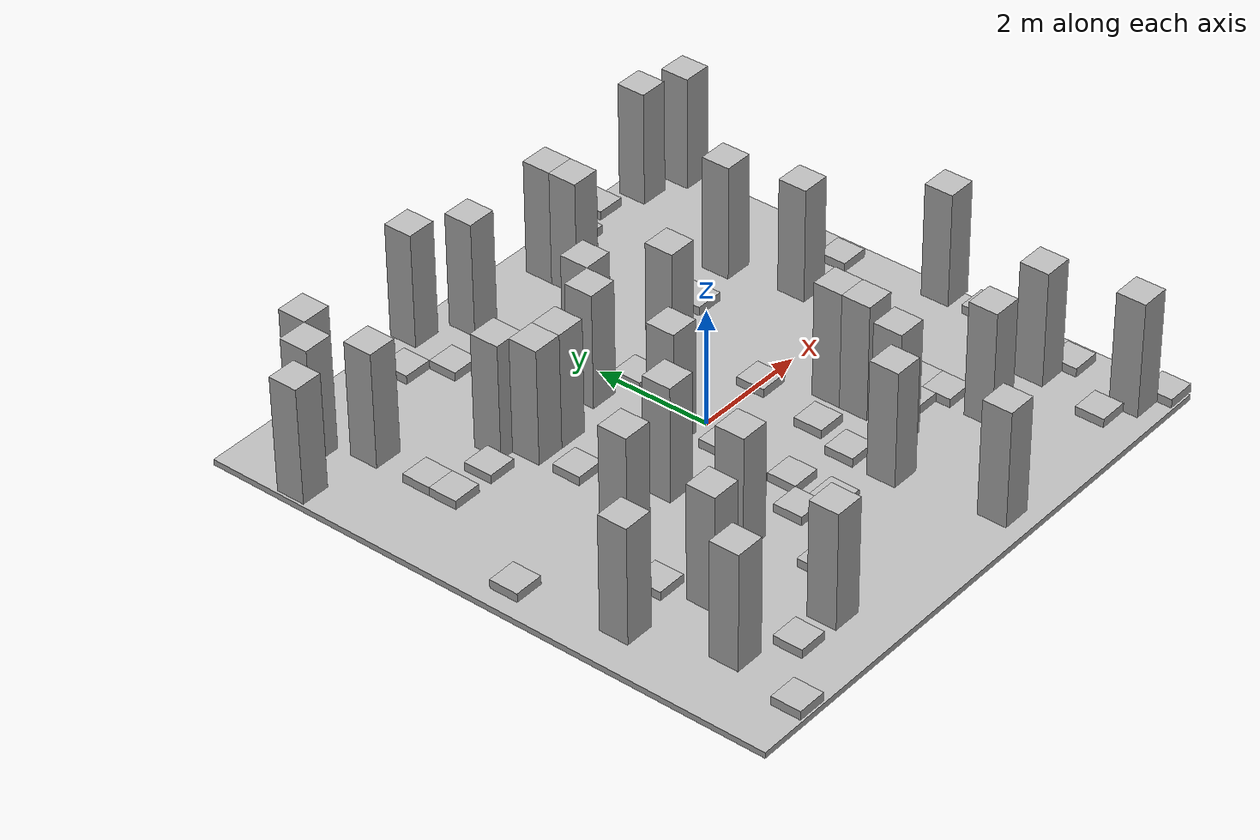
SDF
<?xml version="1.0" ?>
    <sdf version="1.4">
      <world name="simple_world">
        <model name="weld_models">

          <link name="ground">
            <pose>0 0 -0.1 0 0 0</pose>
            <collision name="collision1">
              <geometry>
                <box>
                  <size>10.0 10.0 0.1</size>
                </box>
              </geometry>
            </collision>
            <visual name="visual1">
              <geometry>
                <box>
                  <size>10.0 10.0 0.1</size>
                </box>
              </geometry>
            </visual>
          </link>
          <joint name="fixed_ground_joint" type="fixed">
            <parent>world</parent>
            <child>ground</child>
          </joint>

          <link name="obstacle_0">
            <pose>2.75 -3.0 1.0 0 0 0</pose>
            <collision name="collision1">
              <geometry>
                <box>
                  <size>0.5 0.5 2.0</size>
                </box>
              </geometry>
            </collision>
            <visual name="visual1">
              <geometry>
                <box>
                  <size>0.5 0.5 2.0</size>
                </box>
              </geometry>
            </visual>
          </link>
          <joint name="fixed_joint_obstacle_0" type="fixed">
            <parent>world</parent>
            <child>obstacle_0</child>
          </joint>

          <link name="obstacle_1">
            <pose>4.0 -3.0 1.0 0 0 0</pose>
            <collision name="collision1">
              <geometry>
                <box>
                  <size>0.5 0.5 2.0</size>
                </box>
              </geometry>
            </collision>
            <visual name="visual1">
              <geometry>
                <box>
                  <size>0.5 0.5 2.0</size>
                </box>
              </geometry>
            </visual>
          </link>
          <joint name="fixed_joint_obstacle_1" type="fixed">
            <parent>world</parent>
            <child>obstacle_1</child>
          </joint>

          <link name="obstacle_2">
            <pose>-0.25 4.25 1.0 0 0 0</pose>
            <collision name="collision1">
              <geometry>
                <box>
                  <size>0.5 0.5 2.0</size>
                </box>
              </geometry>
            </collision>
            <visual name="visual1">
              <geometry>
                <box>
                  <size>0.5 0.5 2.0</size>
                </box>
              </geometry>
            </visual>
          </link>
          <joint name="fixed_joint_obstacle_2" type="fixed">
            <parent>world</parent>
            <child>obstacle_2</child>
          </joint>

          <link name="obstacle_3">
            <pose>-1.5 -3.25 0.075 0 0 0</pose>
            <collision name="collision1">
              <geometry>
                <box>
                  <size>0.5 0.5 0.15</size>
                </box>
              </geometry>
            </collision>
            <visual name="visual1">
              <geometry>
                <box>
                  <size>0.5 0.5 0.15</size>
                </box>
              </geometry>
            </visual>
          </link>
          <joint name="fixed_joint_obstacle_3" type="fixed">
            <parent>world</parent>
            <child>obstacle_3</child>
          </joint>

          <link name="obstacle_4">
            <pose>2.25 -2.0 0.075 0 0 0</pose>
            <collision name="collision1">
              <geometry>
                <box>
                  <size>0.5 0.5 0.15</size>
                </box>
              </geometry>
            </collision>
            <visual name="visual1">
              <geometry>
                <box>
                  <size>0.5 0.5 0.15</size>
                </box>
              </geometry>
            </visual>
          </link>
          <joint name="fixed_joint_obstacle_4" type="fixed">
            <parent>world</parent>
            <child>obstacle_4</child>
          </joint>

          <link name="obstacle_5">
            <pose>2.25 2.0 0.075 0 0 0</pose>
            <collision name="collision1">
              <geometry>
                <box>
                  <size>0.5 0.5 0.15</size>
                </box>
              </geometry>
            </collision>
            <visual name="visual1">
              <geometry>
                <box>
                  <size>0.5 0.5 0.15</size>
                </box>
              </geometry>
            </visual>
          </link>
          <joint name="fixed_joint_obstacle_5" type="fixed">
            <parent>world</parent>
            <child>obstacle_5</child>
          </joint>

          <link name="obstacle_6">
            <pose>-1.75 4.25 0.075 0 0 0</pose>
            <collision name="collision1">
              <geometry>
                <box>
                  <size>0.5 0.5 0.15</size>
                </box>
              </geometry>
            </collision>
            <visual name="visual1">
              <geometry>
                <box>
                  <size>0.5 0.5 0.15</size>
                </box>
              </geometry>
            </visual>
          </link>
          <joint name="fixed_joint_obstacle_6" type="fixed">
            <parent>world</parent>
            <child>obstacle_6</child>
          </joint>

          <link name="obstacle_7">
            <pose>1.25 0.0 0.075 0 0 0</pose>
            <collision name="collision1">
              <geometry>
                <box>
                  <size>0.5 0.5 0.15</size>
                </box>
              </geometry>
            </collision>
            <visual name="visual1">
              <geometry>
                <box>
                  <size>0.5 0.5 0.15</size>
                </box>
              </geometry>
            </visual>
          </link>
          <joint name="fixed_joint_obstacle_7" type="fixed">
            <parent>world</parent>
            <child>obstacle_7</child>
          </joint>

          <link name="obstacle_8">
            <pose>1.5 -2.25 1.0 0 0 0</pose>
            <collision name="collision1">
              <geometry>
                <box>
                  <size>0.5 0.5 2.0</size>
                </box>
              </geometry>
            </collision>
            <visual name="visual1">
              <geometry>
                <box>
                  <size>0.5 0.5 2.0</size>
                </box>
              </geometry>
            </visual>
          </link>
          <joint name="fixed_joint_obstacle_8" type="fixed">
            <parent>world</parent>
            <child>obstacle_8</child>
          </joint>

          <link name="obstacle_9">
            <pose>-0.5 0.25 1.0 0 0 0</pose>
            <collision name="collision1">
              <geometry>
                <box>
                  <size>0.5 0.5 2.0</size>
                </box>
              </geometry>
            </collision>
            <visual name="visual1">
              <geometry>
                <box>
                  <size>0.5 0.5 2.0</size>
                </box>
              </geometry>
            </visual>
          </link>
          <joint name="fixed_joint_obstacle_9" type="fixed">
            <parent>world</parent>
            <child>obstacle_9</child>
          </joint>

          <link name="obstacle_10">
            <pose>1.5 4.25 1.0 0 0 0</pose>
            <collision name="collision1">
              <geometry>
                <box>
                  <size>0.5 0.5 2.0</size>
                </box>
              </geometry>
            </collision>
            <visual name="visual1">
              <geometry>
                <box>
                  <size>0.5 0.5 2.0</size>
                </box>
              </geometry>
            </visual>
          </link>
          <joint name="fixed_joint_obstacle_10" type="fixed">
            <parent>world</parent>
            <child>obstacle_10</child>
          </joint>

          <link name="obstacle_11">
            <pose>4.75 -1.5 0.075 0 0 0</pose>
            <collision name="collision1">
              <geometry>
                <box>
                  <size>0.5 0.5 0.15</size>
                </box>
              </geometry>
            </collision>
            <visual name="visual1">
              <geometry>
                <box>
                  <size>0.5 0.5 0.15</size>
                </box>
              </geometry>
            </visual>
          </link>
          <joint name="fixed_joint_obstacle_11" type="fixed">
            <parent>world</parent>
            <child>obstacle_11</child>
          </joint>

          <link name="obstacle_12">
            <pose>-2.75 1.75 0.075 0 0 0</pose>
            <collision name="collision1">
              <geometry>
                <box>
                  <size>0.5 0.5 0.15</size>
                </box>
              </geometry>
            </collision>
            <visual name="visual1">
              <geometry>
                <box>
                  <size>0.5 0.5 0.15</size>
                </box>
              </geometry>
            </visual>
          </link>
          <joint name="fixed_joint_obstacle_12" type="fixed">
            <parent>world</parent>
            <child>obstacle_12</child>
          </joint>

          <link name="obstacle_13">
            <pose>-1.0 0.25 0.075 0 0 0</pose>
            <collision name="collision1">
              <geometry>
                <box>
                  <size>0.5 0.5 0.15</size>
                </box>
              </geometry>
            </collision>
            <visual name="visual1">
              <geometry>
                <box>
                  <size>0.5 0.5 0.15</size>
                </box>
              </geometry>
            </visual>
          </link>
          <joint name="fixed_joint_obstacle_13" type="fixed">
            <parent>world</parent>
            <child>obstacle_13</child>
          </joint>

          <link name="obstacle_14">
            <pose>3.0 -0.75 0.075 0 0 0</pose>
            <collision name="collision1">
              <geometry>
                <box>
                  <size>0.5 0.5 0.15</size>
                </box>
              </geometry>
            </collision>
            <visual name="visual1">
              <geometry>
                <box>
                  <size>0.5 0.5 0.15</size>
                </box>
              </geometry>
            </visual>
          </link>
          <joint name="fixed_joint_obstacle_14" type="fixed">
            <parent>world</parent>
            <child>obstacle_14</child>
          </joint>

          <link name="obstacle_15">
            <pose>-1.5 1.5 1.0 0 0 0</pose>
            <collision name="collision1">
              <geometry>
                <box>
                  <size>0.5 0.5 2.0</size>
                </box>
              </geometry>
            </collision>
            <visual name="visual1">
              <geometry>
                <box>
                  <size>0.5 0.5 2.0</size>
                </box>
              </geometry>
            </visual>
          </link>
          <joint name="fixed_joint_obstacle_15" type="fixed">
            <parent>world</parent>
            <child>obstacle_15</child>
          </joint>

          <link name="obstacle_16">
            <pose>-0.25 -0.5 0.075 0 0 0</pose>
            <collision name="collision1">
              <geometry>
                <box>
                  <size>0.5 0.5 0.15</size>
                </box>
              </geometry>
            </collision>
            <visual name="visual1">
              <geometry>
                <box>
                  <size>0.5 0.5 0.15</size>
                </box>
              </geometry>
            </visual>
          </link>
          <joint name="fixed_joint_obstacle_16" type="fixed">
            <parent>world</parent>
            <child>obstacle_16</child>
          </joint>

          <link name="obstacle_17">
            <pose>-4.25 -2.0 1.0 0 0 0</pose>
            <collision name="collision1">
              <geometry>
                <box>
                  <size>0.5 0.5 2.0</size>
                </box>
              </geometry>
            </collision>
            <visual name="visual1">
              <geometry>
                <box>
                  <size>0.5 0.5 2.0</size>
                </box>
              </geometry>
            </visual>
          </link>
          <joint name="fixed_joint_obstacle_17" type="fixed">
            <parent>world</parent>
            <child>obstacle_17</child>
          </joint>

          <link name="obstacle_18">
            <pose>-3.5 4.5 1.0 0 0 0</pose>
            <collision name="collision1">
              <geometry>
                <box>
                  <size>0.5 0.5 2.0</size>
                </box>
              </geometry>
            </collision>
            <visual name="visual1">
              <geometry>
                <box>
                  <size>0.5 0.5 2.0</size>
                </box>
              </geometry>
            </visual>
          </link>
          <joint name="fixed_joint_obstacle_18" type="fixed">
            <parent>world</parent>
            <child>obstacle_18</child>
          </joint>

          <link name="obstacle_19">
            <pose>-1.75 -2.0 1.0 0 0 0</pose>
            <collision name="collision1">
              <geometry>
                <box>
                  <size>0.5 0.5 2.0</size>
                </box>
              </geometry>
            </collision>
            <visual name="visual1">
              <geometry>
                <box>
                  <size>0.5 0.5 2.0</size>
                </box>
              </geometry>
            </visual>
          </link>
          <joint name="fixed_joint_obstacle_19" type="fixed">
            <parent>world</parent>
            <child>obstacle_19</child>
          </joint>

          <link name="obstacle_20">
            <pose>1.75 -1.0 1.0 0 0 0</pose>
            <collision name="collision1">
              <geometry>
                <box>
                  <size>0.5 0.5 2.0</size>
                </box>
              </geometry>
            </collision>
            <visual name="visual1">
              <geometry>
                <box>
                  <size>0.5 0.5 2.0</size>
                </box>
              </geometry>
            </visual>
          </link>
          <joint name="fixed_joint_obstacle_20" type="fixed">
            <parent>world</parent>
            <child>obstacle_20</child>
          </joint>

          <link name="obstacle_21">
            <pose>-2.0 1.5 1.0 0 0 0</pose>
            <collision name="collision1">
              <geometry>
                <box>
                  <size>0.5 0.5 2.0</size>
                </box>
              </geometry>
            </collision>
            <visual name="visual1">
              <geometry>
                <box>
                  <size>0.5 0.5 2.0</size>
                </box>
              </geometry>
            </visual>
          </link>
          <joint name="fixed_joint_obstacle_21" type="fixed">
            <parent>world</parent>
            <child>obstacle_21</child>
          </joint>

          <link name="obstacle_22">
            <pose>4.5 -3.25 0.075 0 0 0</pose>
            <collision name="collision1">
              <geometry>
                <box>
                  <size>0.5 0.5 0.15</size>
                </box>
              </geometry>
            </collision>
            <visual name="visual1">
              <geometry>
                <box>
                  <size>0.5 0.5 0.15</size>
                </box>
              </geometry>
            </visual>
          </link>
          <joint name="fixed_joint_obstacle_22" type="fixed">
            <parent>world</parent>
            <child>obstacle_22</child>
          </joint>

          <link name="obstacle_23">
            <pose>0.75 -2.0 0.075 0 0 0</pose>
            <collision name="collision1">
              <geometry>
                <box>
                  <size>0.5 0.5 0.15</size>
                </box>
              </geometry>
            </collision>
            <visual name="visual1">
              <geometry>
                <box>
                  <size>0.5 0.5 0.15</size>
                </box>
              </geometry>
            </visual>
          </link>
          <joint name="fixed_joint_obstacle_23" type="fixed">
            <parent>world</parent>
            <child>obstacle_23</child>
          </joint>

          <link name="obstacle_24">
            <pose>-1.0 0.75 0.075 0 0 0</pose>
            <collision name="collision1">
              <geometry>
                <box>
                  <size>0.5 0.5 0.15</size>
                </box>
              </geometry>
            </collision>
            <visual name="visual1">
              <geometry>
                <box>
                  <size>0.5 0.5 0.15</size>
                </box>
              </geometry>
            </visual>
          </link>
          <joint name="fixed_joint_obstacle_24" type="fixed">
            <parent>world</parent>
            <child>obstacle_24</child>
          </joint>

          <link name="obstacle_25">
            <pose>-0.75 -2.25 0.075 0 0 0</pose>
            <collision name="collision1">
              <geometry>
                <box>
                  <size>0.5 0.5 0.15</size>
                </box>
              </geometry>
            </collision>
            <visual name="visual1">
              <geometry>
                <box>
                  <size>0.5 0.5 0.15</size>
                </box>
              </geometry>
            </visual>
          </link>
          <joint name="fixed_joint_obstacle_25" type="fixed">
            <parent>world</parent>
            <child>obstacle_25</child>
          </joint>

          <link name="obstacle_26">
            <pose>1.0 -1.25 0.075 0 0 0</pose>
            <collision name="collision1">
              <geometry>
                <box>
                  <size>0.5 0.5 0.15</size>
                </box>
              </geometry>
            </collision>
            <visual name="visual1">
              <geometry>
                <box>
                  <size>0.5 0.5 0.15</size>
                </box>
              </geometry>
            </visual>
          </link>
          <joint name="fixed_joint_obstacle_26" type="fixed">
            <parent>world</parent>
            <child>obstacle_26</child>
          </joint>

          <link name="obstacle_27">
            <pose>4.25 -4.5 1.0 0 0 0</pose>
            <collision name="collision1">
              <geometry>
                <box>
                  <size>0.5 0.5 2.0</size>
                </box>
              </geometry>
            </collision>
            <visual name="visual1">
              <geometry>
                <box>
                  <size>0.5 0.5 2.0</size>
                </box>
              </geometry>
            </visual>
          </link>
          <joint name="fixed_joint_obstacle_27" type="fixed">
            <parent>world</parent>
            <child>obstacle_27</child>
          </joint>

          <link name="obstacle_28">
            <pose>-4.0 4.0 1.0 0 0 0</pose>
            <collision name="collision1">
              <geometry>
                <box>
                  <size>0.5 0.5 2.0</size>
                </box>
              </geometry>
            </collision>
            <visual name="visual1">
              <geometry>
                <box>
                  <size>0.5 0.5 2.0</size>
                </box>
              </geometry>
            </visual>
          </link>
          <joint name="fixed_joint_obstacle_28" type="fixed">
            <parent>world</parent>
            <child>obstacle_28</child>
          </joint>

          <link name="obstacle_29">
            <pose>-1.25 3.75 0.075 0 0 0</pose>
            <collision name="collision1">
              <geometry>
                <box>
                  <size>0.5 0.5 0.15</size>
                </box>
              </geometry>
            </collision>
            <visual name="visual1">
              <geometry>
                <box>
                  <size>0.5 0.5 0.15</size>
                </box>
              </geometry>
            </visual>
          </link>
          <joint name="fixed_joint_obstacle_29" type="fixed">
            <parent>world</parent>
            <child>obstacle_29</child>
          </joint>

          <link name="obstacle_30">
            <pose>1.0 1.5 1.0 0 0 0</pose>
            <collision name="collision1">
              <geometry>
                <box>
                  <size>0.5 0.5 2.0</size>
                </box>
              </geometry>
            </collision>
            <visual name="visual1">
              <geometry>
                <box>
                  <size>0.5 0.5 2.0</size>
                </box>
              </geometry>
            </visual>
          </link>
          <joint name="fixed_joint_obstacle_30" type="fixed">
            <parent>world</parent>
            <child>obstacle_30</child>
          </joint>

          <link name="obstacle_31">
            <pose>-2.0 0.75 0.075 0 0 0</pose>
            <collision name="collision1">
              <geometry>
                <box>
                  <size>0.5 0.5 0.15</size>
                </box>
              </geometry>
            </collision>
            <visual name="visual1">
              <geometry>
                <box>
                  <size>0.5 0.5 0.15</size>
                </box>
              </geometry>
            </visual>
          </link>
          <joint name="fixed_joint_obstacle_31" type="fixed">
            <parent>world</parent>
            <child>obstacle_31</child>
          </joint>

          <link name="obstacle_32">
            <pose>-0.75 -1.25 0.075 0 0 0</pose>
            <collision name="collision1">
              <geometry>
                <box>
                  <size>0.5 0.5 0.15</size>
                </box>
              </geometry>
            </collision>
            <visual name="visual1">
              <geometry>
                <box>
                  <size>0.5 0.5 0.15</size>
                </box>
              </geometry>
            </visual>
          </link>
          <joint name="fixed_joint_obstacle_32" type="fixed">
            <parent>world</parent>
            <child>obstacle_32</child>
          </joint>

          <link name="obstacle_33">
            <pose>-2.75 -0.75 1.0 0 0 0</pose>
            <collision name="collision1">
              <geometry>
                <box>
                  <size>0.5 0.5 2.0</size>
                </box>
              </geometry>
            </collision>
            <visual name="visual1">
              <geometry>
                <box>
                  <size>0.5 0.5 2.0</size>
                </box>
              </geometry>
            </visual>
          </link>
          <joint name="fixed_joint_obstacle_33" type="fixed">
            <parent>world</parent>
            <child>obstacle_33</child>
          </joint>

          <link name="obstacle_34">
            <pose>2.75 -1.75 0.075 0 0 0</pose>
            <collision name="collision1">
              <geometry>
                <box>
                  <size>0.5 0.5 0.15</size>
                </box>
              </geometry>
            </collision>
            <visual name="visual1">
              <geometry>
                <box>
                  <size>0.5 0.5 0.15</size>
                </box>
              </geometry>
            </visual>
          </link>
          <joint name="fixed_joint_obstacle_34" type="fixed">
            <parent>world</parent>
            <child>obstacle_34</child>
          </joint>

          <link name="obstacle_35">
            <pose>-0.25 -1.75 0.075 0 0 0</pose>
            <collision name="collision1">
              <geometry>
                <box>
                  <size>0.5 0.5 0.15</size>
                </box>
              </geometry>
            </collision>
            <visual name="visual1">
              <geometry>
                <box>
                  <size>0.5 0.5 0.15</size>
                </box>
              </geometry>
            </visual>
          </link>
          <joint name="fixed_joint_obstacle_35" type="fixed">
            <parent>world</parent>
            <child>obstacle_35</child>
          </joint>

          <link name="obstacle_36">
            <pose>3.25 2.25 1.0 0 0 0</pose>
            <collision name="collision1">
              <geometry>
                <box>
                  <size>0.5 0.5 2.0</size>
                </box>
              </geometry>
            </collision>
            <visual name="visual1">
              <geometry>
                <box>
                  <size>0.5 0.5 2.0</size>
                </box>
              </geometry>
            </visual>
          </link>
          <joint name="fixed_joint_obstacle_36" type="fixed">
            <parent>world</parent>
            <child>obstacle_36</child>
          </joint>

          <link name="obstacle_37">
            <pose>-3.5 2.25 0.075 0 0 0</pose>
            <collision name="collision1">
              <geometry>
                <box>
                  <size>0.5 0.5 0.15</size>
                </box>
              </geometry>
            </collision>
            <visual name="visual1">
              <geometry>
                <box>
                  <size>0.5 0.5 0.15</size>
                </box>
              </geometry>
            </visual>
          </link>
          <joint name="fixed_joint_obstacle_37" type="fixed">
            <parent>world</parent>
            <child>obstacle_37</child>
          </joint>

          <link name="obstacle_38">
            <pose>-0.25 -2.5 0.075 0 0 0</pose>
            <collision name="collision1">
              <geometry>
                <box>
                  <size>0.5 0.5 0.15</size>
                </box>
              </geometry>
            </collision>
            <visual name="visual1">
              <geometry>
                <box>
                  <size>0.5 0.5 0.15</size>
                </box>
              </geometry>
            </visual>
          </link>
          <joint name="fixed_joint_obstacle_38" type="fixed">
            <parent>world</parent>
            <child>obstacle_38</child>
          </joint>

          <link name="obstacle_39">
            <pose>-1.75 2.0 0.075 0 0 0</pose>
            <collision name="collision1">
              <geometry>
                <box>
                  <size>0.5 0.5 0.15</size>
                </box>
              </geometry>
            </collision>
            <visual name="visual1">
              <geometry>
                <box>
                  <size>0.5 0.5 0.15</size>
                </box>
              </geometry>
            </visual>
          </link>
          <joint name="fixed_joint_obstacle_39" type="fixed">
            <parent>world</parent>
            <child>obstacle_39</child>
          </joint>

          <link name="obstacle_40">
            <pose>-4.0 -4.75 0.075 0 0 0</pose>
            <collision name="collision1">
              <geometry>
                <box>
                  <size>0.5 0.5 0.15</size>
                </box>
              </geometry>
            </collision>
            <visual name="visual1">
              <geometry>
                <box>
                  <size>0.5 0.5 0.15</size>
                </box>
              </geometry>
            </visual>
          </link>
          <joint name="fixed_joint_obstacle_40" type="fixed">
            <parent>world</parent>
            <child>obstacle_40</child>
          </joint>

          <link name="obstacle_41">
            <pose>-3.75 -3.5 1.0 0 0 0</pose>
            <collision name="collision1">
              <geometry>
                <box>
                  <size>0.5 0.5 2.0</size>
                </box>
              </geometry>
            </collision>
            <visual name="visual1">
              <geometry>
                <box>
                  <size>0.5 0.5 2.0</size>
                </box>
              </geometry>
            </visual>
          </link>
          <joint name="fixed_joint_obstacle_41" type="fixed">
            <parent>world</parent>
            <child>obstacle_41</child>
          </joint>

          <link name="obstacle_42">
            <pose>4.0 4.5 1.0 0 0 0</pose>
            <collision name="collision1">
              <geometry>
                <box>
                  <size>0.5 0.5 2.0</size>
                </box>
              </geometry>
            </collision>
            <visual name="visual1">
              <geometry>
                <box>
                  <size>0.5 0.5 2.0</size>
                </box>
              </geometry>
            </visual>
          </link>
          <joint name="fixed_joint_obstacle_42" type="fixed">
            <parent>world</parent>
            <child>obstacle_42</child>
          </joint>

          <link name="obstacle_43">
            <pose>4.75 -4.75 0.075 0 0 0</pose>
            <collision name="collision1">
              <geometry>
                <box>
                  <size>0.5 0.5 0.15</size>
                </box>
              </geometry>
            </collision>
            <visual name="visual1">
              <geometry>
                <box>
                  <size>0.5 0.5 0.15</size>
                </box>
              </geometry>
            </visual>
          </link>
          <joint name="fixed_joint_obstacle_43" type="fixed">
            <parent>world</parent>
            <child>obstacle_43</child>
          </joint>

          <link name="obstacle_44">
            <pose>2.5 4.5 0.075 0 0 0</pose>
            <collision name="collision1">
              <geometry>
                <box>
                  <size>0.5 0.5 0.15</size>
                </box>
              </geometry>
            </collision>
            <visual name="visual1">
              <geometry>
                <box>
                  <size>0.5 0.5 0.15</size>
                </box>
              </geometry>
            </visual>
          </link>
          <joint name="fixed_joint_obstacle_44" type="fixed">
            <parent>world</parent>
            <child>obstacle_44</child>
          </joint>

          <link name="obstacle_45">
            <pose>-1.5 -0.5 1.0 0 0 0</pose>
            <collision name="collision1">
              <geometry>
                <box>
                  <size>0.5 0.5 2.0</size>
                </box>
              </geometry>
            </collision>
            <visual name="visual1">
              <geometry>
                <box>
                  <size>0.5 0.5 2.0</size>
                </box>
              </geometry>
            </visual>
          </link>
          <joint name="fixed_joint_obstacle_45" type="fixed">
            <parent>world</parent>
            <child>obstacle_45</child>
          </joint>

          <link name="obstacle_46">
            <pose>-3.5 1.75 0.075 0 0 0</pose>
            <collision name="collision1">
              <geometry>
                <box>
                  <size>0.5 0.5 0.15</size>
                </box>
              </geometry>
            </collision>
            <visual name="visual1">
              <geometry>
                <box>
                  <size>0.5 0.5 0.15</size>
                </box>
              </geometry>
            </visual>
          </link>
          <joint name="fixed_joint_obstacle_46" type="fixed">
            <parent>world</parent>
            <child>obstacle_46</child>
          </joint>

          <link name="obstacle_47">
            <pose>-3.25 -1.75 0.075 0 0 0</pose>
            <collision name="collision1">
              <geometry>
                <box>
                  <size>0.5 0.5 0.15</size>
                </box>
              </geometry>
            </collision>
            <visual name="visual1">
              <geometry>
                <box>
                  <size>0.5 0.5 0.15</size>
                </box>
              </geometry>
            </visual>
          </link>
          <joint name="fixed_joint_obstacle_47" type="fixed">
            <parent>world</parent>
            <child>obstacle_47</child>
          </joint>

          <link name="obstacle_48">
            <pose>-2.25 2.0 1.0 0 0 0</pose>
            <collision name="collision1">
              <geometry>
                <box>
                  <size>0.5 0.5 2.0</size>
                </box>
              </geometry>
            </collision>
            <visual name="visual1">
              <geometry>
                <box>
                  <size>0.5 0.5 2.0</size>
                </box>
              </geometry>
            </visual>
          </link>
          <joint name="fixed_joint_obstacle_48" type="fixed">
            <parent>world</parent>
            <child>obstacle_48</child>
          </joint>

          <link name="obstacle_49">
            <pose>1.0 -4.5 1.0 0 0 0</pose>
            <collision name="collision1">
              <geometry>
                <box>
                  <size>0.5 0.5 2.0</size>
                </box>
              </geometry>
            </collision>
            <visual name="visual1">
              <geometry>
                <box>
                  <size>0.5 0.5 2.0</size>
                </box>
              </geometry>
            </visual>
          </link>
          <joint name="fixed_joint_obstacle_49" type="fixed">
            <parent>world</parent>
            <child>obstacle_49</child>
          </joint>

          <link name="obstacle_50">
            <pose>0.25 1.5 0.075 0 0 0</pose>
            <collision name="collision1">
              <geometry>
                <box>
                  <size>0.5 0.5 0.15</size>
                </box>
              </geometry>
            </collision>
            <visual name="visual1">
              <geometry>
                <box>
                  <size>0.5 0.5 0.15</size>
                </box>
              </geometry>
            </visual>
          </link>
          <joint name="fixed_joint_obstacle_50" type="fixed">
            <parent>world</parent>
            <child>obstacle_50</child>
          </joint>

          <link name="obstacle_51">
            <pose>0.75 -2.75 1.0 0 0 0</pose>
            <collision name="collision1">
              <geometry>
                <box>
                  <size>0.5 0.5 2.0</size>
                </box>
              </geometry>
            </collision>
            <visual name="visual1">
              <geometry>
                <box>
                  <size>0.5 0.5 2.0</size>
                </box>
              </geometry>
            </visual>
          </link>
          <joint name="fixed_joint_obstacle_51" type="fixed">
            <parent>world</parent>
            <child>obstacle_51</child>
          </joint>

          <link name="obstacle_52">
            <pose>-0.5 1.75 1.0 0 0 0</pose>
            <collision name="collision1">
              <geometry>
                <box>
                  <size>0.5 0.5 2.0</size>
                </box>
              </geometry>
            </collision>
            <visual name="visual1">
              <geometry>
                <box>
                  <size>0.5 0.5 2.0</size>
                </box>
              </geometry>
            </visual>
          </link>
          <joint name="fixed_joint_obstacle_52" type="fixed">
            <parent>world</parent>
            <child>obstacle_52</child>
          </joint>

          <link name="obstacle_53">
            <pose>3.5 1.0 1.0 0 0 0</pose>
            <collision name="collision1">
              <geometry>
                <box>
                  <size>0.5 0.5 2.0</size>
                </box>
              </geometry>
            </collision>
            <visual name="visual1">
              <geometry>
                <box>
                  <size>0.5 0.5 2.0</size>
                </box>
              </geometry>
            </visual>
          </link>
          <joint name="fixed_joint_obstacle_53" type="fixed">
            <parent>world</parent>
            <child>obstacle_53</child>
          </joint>

          <link name="obstacle_54">
            <pose>-2.25 -4.0 1.0 0 0 0</pose>
            <collision name="collision1">
              <geometry>
                <box>
                  <size>0.5 0.5 2.0</size>
                </box>
              </geometry>
            </collision>
            <visual name="visual1">
              <geometry>
                <box>
                  <size>0.5 0.5 2.0</size>
                </box>
              </geometry>
            </visual>
          </link>
          <joint name="fixed_joint_obstacle_54" type="fixed">
            <parent>world</parent>
            <child>obstacle_54</child>
          </joint>

          <link name="obstacle_55">
            <pose>2.25 -1.25 0.075 0 0 0</pose>
            <collision name="collision1">
              <geometry>
                <box>
                  <size>0.5 0.5 0.15</size>
                </box>
              </geometry>
            </collision>
            <visual name="visual1">
              <geometry>
                <box>
                  <size>0.5 0.5 0.15</size>
                </box>
              </geometry>
            </visual>
          </link>
          <joint name="fixed_joint_obstacle_55" type="fixed">
            <parent>world</parent>
            <child>obstacle_55</child>
          </joint>

          <link name="obstacle_56">
            <pose>2.75 -2.25 0.075 0 0 0</pose>
            <collision name="collision1">
              <geometry>
                <box>
                  <size>0.5 0.5 0.15</size>
                </box>
              </geometry>
            </collision>
            <visual name="visual1">
              <geometry>
                <box>
                  <size>0.5 0.5 0.15</size>
                </box>
              </geometry>
            </visual>
          </link>
          <joint name="fixed_joint_obstacle_56" type="fixed">
            <parent>world</parent>
            <child>obstacle_56</child>
          </joint>

          <link name="obstacle_57">
            <pose>1.5 3.75 1.0 0 0 0</pose>
            <collision name="collision1">
              <geometry>
                <box>
                  <size>0.5 0.5 2.0</size>
                </box>
              </geometry>
            </collision>
            <visual name="visual1">
              <geometry>
                <box>
                  <size>0.5 0.5 2.0</size>
                </box>
              </geometry>
            </visual>
          </link>
          <joint name="fixed_joint_obstacle_57" type="fixed">
            <parent>world</parent>
            <child>obstacle_57</child>
          </joint>

          <link name="obstacle_58">
            <pose>-1.0 4.75 1.0 0 0 0</pose>
            <collision name="collision1">
              <geometry>
                <box>
                  <size>0.5 0.5 2.0</size>
                </box>
              </geometry>
            </collision>
            <visual name="visual1">
              <geometry>
                <box>
                  <size>0.5 0.5 2.0</size>
                </box>
              </geometry>
            </visual>
          </link>
          <joint name="fixed_joint_obstacle_58" type="fixed">
            <parent>world</parent>
            <child>obstacle_58</child>
          </joint>

          <link name="obstacle_59">
            <pose>4.5 1.0 0.075 0 0 0</pose>
            <collision name="collision1">
              <geometry>
                <box>
                  <size>0.5 0.5 0.15</size>
                </box>
              </geometry>
            </collision>
            <visual name="visual1">
              <geometry>
                <box>
                  <size>0.5 0.5 0.15</size>
                </box>
              </geometry>
            </visual>
          </link>
          <joint name="fixed_joint_obstacle_59" type="fixed">
            <parent>world</parent>
            <child>obstacle_59</child>
          </joint>

          <link name="obstacle_60">
            <pose>4.75 4.25 1.0 0 0 0</pose>
            <collision name="collision1">
              <geometry>
                <box>
                  <size>0.5 0.5 2.0</size>
                </box>
              </geometry>
            </collision>
            <visual name="visual1">
              <geometry>
                <box>
                  <size>0.5 0.5 2.0</size>
                </box>
              </geometry>
            </visual>
          </link>
          <joint name="fixed_joint_obstacle_60" type="fixed">
            <parent>world</parent>
            <child>obstacle_60</child>
          </joint>

          <link name="obstacle_61">
            <pose>1.75 -1.5 1.0 0 0 0</pose>
            <collision name="collision1">
              <geometry>
                <box>
                  <size>0.5 0.5 2.0</size>
                </box>
              </geometry>
            </collision>
            <visual name="visual1">
              <geometry>
                <box>
                  <size>0.5 0.5 2.0</size>
                </box>
              </geometry>
            </visual>
          </link>
          <joint name="fixed_joint_obstacle_61" type="fixed">
            <parent>world</parent>
            <child>obstacle_61</child>
          </joint>

          <link name="obstacle_62">
            <pose>-4.75 3.5 1.0 0 0 0</pose>
            <collision name="collision1">
              <geometry>
                <box>
                  <size>0.5 0.5 2.0</size>
                </box>
              </geometry>
            </collision>
            <visual name="visual1">
              <geometry>
                <box>
                  <size>0.5 0.5 2.0</size>
                </box>
              </geometry>
            </visual>
          </link>
          <joint name="fixed_joint_obstacle_62" type="fixed">
            <parent>world</parent>
            <child>obstacle_62</child>
          </joint>

          <link name="obstacle_63">
            <pose>4.75 -0.75 1.0 0 0 0</pose>
            <collision name="collision1">
              <geometry>
                <box>
                  <size>0.5 0.5 2.0</size>
                </box>
              </geometry>
            </collision>
            <visual name="visual1">
              <geometry>
                <box>
                  <size>0.5 0.5 2.0</size>
                </box>
              </geometry>
            </visual>
          </link>
          <joint name="fixed_joint_obstacle_63" type="fixed">
            <parent>world</parent>
            <child>obstacle_63</child>
          </joint>

          <link name="obstacle_64">
            <pose>-4.5 -0.25 0.075 0 0 0</pose>
            <collision name="collision1">
              <geometry>
                <box>
                  <size>0.5 0.5 0.15</size>
                </box>
              </geometry>
            </collision>
            <visual name="visual1">
              <geometry>
                <box>
                  <size>0.5 0.5 0.15</size>
                </box>
              </geometry>
            </visual>
          </link>
          <joint name="fixed_joint_obstacle_64" type="fixed">
            <parent>world</parent>
            <child>obstacle_64</child>
          </joint>

          <link name="obstacle_65">
            <pose>-3.0 -4.0 0.075 0 0 0</pose>
            <collision name="collision1">
              <geometry>
                <box>
                  <size>0.5 0.5 0.15</size>
                </box>
              </geometry>
            </collision>
            <visual name="visual1">
              <geometry>
                <box>
                  <size>0.5 0.5 0.15</size>
                </box>
              </geometry>
            </visual>
          </link>
          <joint name="fixed_joint_obstacle_65" type="fixed">
            <parent>world</parent>
            <child>obstacle_65</child>
          </joint>

          <link name="obstacle_66">
            <pose>-3.0 -2.5 1.0 0 0 0</pose>
            <collision name="collision1">
              <geometry>
                <box>
                  <size>0.5 0.5 2.0</size>
                </box>
              </geometry>
            </collision>
            <visual name="visual1">
              <geometry>
                <box>
                  <size>0.5 0.5 2.0</size>
                </box>
              </geometry>
            </visual>
          </link>
          <joint name="fixed_joint_obstacle_66" type="fixed">
            <parent>world</parent>
            <child>obstacle_66</child>
          </joint>

          <link name="obstacle_67">
            <pose>0.0 2.25 1.0 0 0 0</pose>
            <collision name="collision1">
              <geometry>
                <box>
                  <size>0.5 0.5 2.0</size>
                </box>
              </geometry>
            </collision>
            <visual name="visual1">
              <geometry>
                <box>
                  <size>0.5 0.5 2.0</size>
                </box>
              </geometry>
            </visual>
          </link>
          <joint name="fixed_joint_obstacle_67" type="fixed">
            <parent>world</parent>
            <child>obstacle_67</child>
          </joint>

          <link name="obstacle_68">
            <pose>0.0 3.0 0.075 0 0 0</pose>
            <collision name="collision1">
              <geometry>
                <box>
                  <size>0.5 0.5 0.15</size>
                </box>
              </geometry>
            </collision>
            <visual name="visual1">
              <geometry>
                <box>
                  <size>0.5 0.5 0.15</size>
                </box>
              </geometry>
            </visual>
          </link>
          <joint name="fixed_joint_obstacle_68" type="fixed">
            <parent>world</parent>
            <child>obstacle_68</child>
          </joint>

          <link name="obstacle_69">
            <pose>3.75 -4.25 0.075 0 0 0</pose>
            <collision name="collision1">
              <geometry>
                <box>
                  <size>0.5 0.5 0.15</size>
                </box>
              </geometry>
            </collision>
            <visual name="visual1">
              <geometry>
                <box>
                  <size>0.5 0.5 0.15</size>
                </box>
              </geometry>
            </visual>
          </link>
          <joint name="fixed_joint_obstacle_69" type="fixed">
            <parent>world</parent>
            <child>obstacle_69</child>
          </joint>

          <link name="obstacle_70">
            <pose>3.25 4.75 0.075 0 0 0</pose>
            <collision name="collision1">
              <geometry>
                <box>
                  <size>0.5 0.5 0.15</size>
                </box>
              </geometry>
            </collision>
            <visual name="visual1">
              <geometry>
                <box>
                  <size>0.5 0.5 0.15</size>
                </box>
              </geometry>
            </visual>
          </link>
          <joint name="fixed_joint_obstacle_70" type="fixed">
            <parent>world</parent>
            <child>obstacle_70</child>
          </joint>

          <link name="obstacle_71">
            <pose>-3.5 3.25 1.0 0 0 0</pose>
            <collision name="collision1">
              <geometry>
                <box>
                  <size>0.5 0.5 2.0</size>
                </box>
              </geometry>
            </collision>
            <visual name="visual1">
              <geometry>
                <box>
                  <size>0.5 0.5 2.0</size>
                </box>
              </geometry>
            </visual>
          </link>
          <joint name="fixed_joint_obstacle_71" type="fixed">
            <parent>world</parent>
            <child>obstacle_71</child>
          </joint>

        </model>
      </world>
    </sdf>
